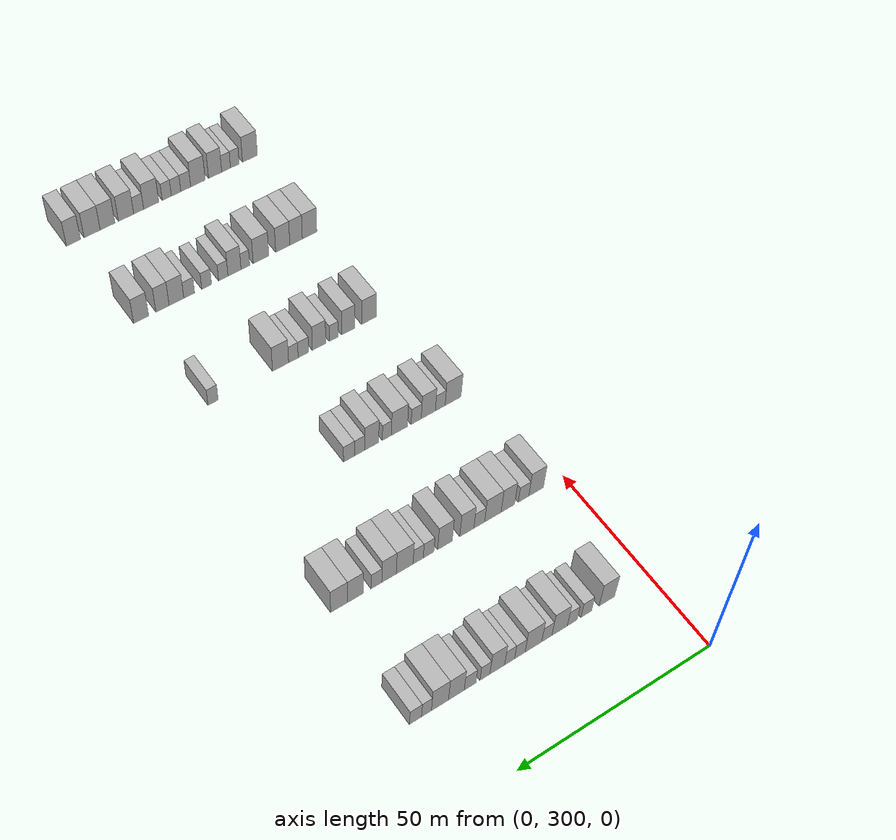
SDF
<sdf version="1.6">
 <world name="default">
  <model name="building_168">
   <static>1</static>
   <pose>25.0000 311.4972 0 0.000000 0.000000 0.000000</pose>
   <link name="link">
    <pose>0 0 4.50 0 0 0</pose>
    <collision name="collision"><geometry><box><size>10.0000 4.1602 9.0000</size></box></geometry></collision>
    <visual name="visual">
     <cast_shadows>0</cast_shadows>
     <geometry><box><size>10.0000 4.1602 9.0000</size></box></geometry>
     <material>
      <script>
       <uri>model://HANNAS_wall/materials/scripts</uri>
       <uri>model://HANNAS_wall/materials/textures</uri>
       <name>vrc/HANNAS_wall</name>
      </script>
     </material>
    </visual>
   </link>
  </model>
  <model name="building_169">
   <static>1</static>
   <pose>25.0000 317.0039 0 0.000000 0.000000 0.000000</pose>
   <link name="link">
    <pose>0 0 3.00 0 0 0</pose>
    <collision name="collision"><geometry><box><size>10.0000 2.8533 6.0000</size></box></geometry></collision>
    <visual name="visual">
     <cast_shadows>0</cast_shadows>
     <geometry><box><size>10.0000 2.8533 6.0000</size></box></geometry>
     <material>
      <script>
       <uri>model://HANNAS_wall/materials/scripts</uri>
       <uri>model://HANNAS_wall/materials/textures</uri>
       <name>vrc/HANNAS_wall</name>
      </script>
     </material>
    </visual>
   </link>
  </model>
  <model name="building_170">
   <static>1</static>
   <pose>25.0000 320.7446 0 0.000000 0.000000 0.000000</pose>
   <link name="link">
    <pose>0 0 3.00 0 0 0</pose>
    <collision name="collision"><geometry><box><size>10.0000 2.6281 6.0000</size></box></geometry></collision>
    <visual name="visual">
     <cast_shadows>0</cast_shadows>
     <geometry><box><size>10.0000 2.6281 6.0000</size></box></geometry>
     <material>
      <script>
       <uri>model://HANNAS_wall/materials/scripts</uri>
       <uri>model://HANNAS_wall/materials/textures</uri>
       <name>vrc/HANNAS_wall</name>
      </script>
     </material>
    </visual>
   </link>
  </model>
  <model name="building_171">
   <static>1</static>
   <pose>25.0000 324.0835 0 0.000000 0.000000 0.000000</pose>
   <link name="link">
    <pose>0 0 4.50 0 0 0</pose>
    <collision name="collision"><geometry><box><size>10.0000 4.0497 9.0000</size></box></geometry></collision>
    <visual name="visual">
     <cast_shadows>0</cast_shadows>
     <geometry><box><size>10.0000 4.0497 9.0000</size></box></geometry>
     <material>
      <script>
       <uri>model://HANNAS_wall/materials/scripts</uri>
       <uri>model://HANNAS_wall/materials/textures</uri>
       <name>vrc/HANNAS_wall</name>
      </script>
     </material>
    </visual>
   </link>
  </model>
  <model name="building_172">
   <static>1</static>
   <pose>25.0000 327.4471 0 0.000000 0.000000 0.000000</pose>
   <link name="link">
    <pose>0 0 3.00 0 0 0</pose>
    <collision name="collision"><geometry><box><size>10.0000 2.6775 6.0000</size></box></geometry></collision>
    <visual name="visual">
     <cast_shadows>0</cast_shadows>
     <geometry><box><size>10.0000 2.6775 6.0000</size></box></geometry>
     <material>
      <script>
       <uri>model://HANNAS_wall/materials/scripts</uri>
       <uri>model://HANNAS_wall/materials/textures</uri>
       <name>vrc/HANNAS_wall</name>
      </script>
     </material>
    </visual>
   </link>
  </model>
  <model name="building_173">
   <static>1</static>
   <pose>25.0000 330.9539 0 0.000000 0.000000 0.000000</pose>
   <link name="link">
    <pose>0 0 4.50 0 0 0</pose>
    <collision name="collision"><geometry><box><size>10.0000 4.3360 9.0000</size></box></geometry></collision>
    <visual name="visual">
     <cast_shadows>0</cast_shadows>
     <geometry><box><size>10.0000 4.3360 9.0000</size></box></geometry>
     <material>
      <script>
       <uri>model://HANNAS_wall/materials/scripts</uri>
       <uri>model://HANNAS_wall/materials/textures</uri>
       <name>vrc/HANNAS_wall</name>
      </script>
     </material>
    </visual>
   </link>
  </model>
  <model name="building_174">
   <static>1</static>
   <pose>25.0000 334.4661 0 0.000000 0.000000 0.000000</pose>
   <link name="link">
    <pose>0 0 3.00 0 0 0</pose>
    <collision name="collision"><geometry><box><size>10.0000 2.6885 6.0000</size></box></geometry></collision>
    <visual name="visual">
     <cast_shadows>0</cast_shadows>
     <geometry><box><size>10.0000 2.6885 6.0000</size></box></geometry>
     <material>
      <script>
       <uri>model://HANNAS_wall/materials/scripts</uri>
       <uri>model://HANNAS_wall/materials/textures</uri>
       <name>vrc/HANNAS_wall</name>
      </script>
     </material>
    </visual>
   </link>
  </model>
  <model name="building_175">
   <static>1</static>
   <pose>25.0000 337.0948 0 0.000000 0.000000 0.000000</pose>
   <link name="link">
    <pose>0 0 3.00 0 0 0</pose>
    <collision name="collision"><geometry><box><size>10.0000 2.5688 6.0000</size></box></geometry></collision>
    <visual name="visual">
     <cast_shadows>0</cast_shadows>
     <geometry><box><size>10.0000 2.5688 6.0000</size></box></geometry>
     <material>
      <script>
       <uri>model://HANNAS_wall/materials/scripts</uri>
       <uri>model://HANNAS_wall/materials/textures</uri>
       <name>vrc/HANNAS_wall</name>
      </script>
     </material>
    </visual>
   </link>
  </model>
  <model name="building_176">
   <static>1</static>
   <pose>25.0000 340.2703 0 0.000000 0.000000 0.000000</pose>
   <link name="link">
    <pose>0 0 4.50 0 0 0</pose>
    <collision name="collision"><geometry><box><size>10.0000 3.7822 9.0000</size></box></geometry></collision>
    <visual name="visual">
     <cast_shadows>0</cast_shadows>
     <geometry><box><size>10.0000 3.7822 9.0000</size></box></geometry>
     <material>
      <script>
       <uri>model://HANNAS_wall/materials/scripts</uri>
       <uri>model://HANNAS_wall/materials/textures</uri>
       <name>vrc/HANNAS_wall</name>
      </script>
     </material>
    </visual>
   </link>
  </model>
  <model name="building_177">
   <static>1</static>
   <pose>25.0000 343.4157 0 0.000000 0.000000 0.000000</pose>
   <link name="link">
    <pose>0 0 3.00 0 0 0</pose>
    <collision name="collision"><geometry><box><size>10.0000 2.5087 6.0000</size></box></geometry></collision>
    <visual name="visual">
     <cast_shadows>0</cast_shadows>
     <geometry><box><size>10.0000 2.5087 6.0000</size></box></geometry>
     <material>
      <script>
       <uri>model://HANNAS_wall/materials/scripts</uri>
       <uri>model://HANNAS_wall/materials/textures</uri>
       <name>vrc/HANNAS_wall</name>
      </script>
     </material>
    </visual>
   </link>
  </model>
  <model name="building_178">
   <static>1</static>
   <pose>25.0000 347.1576 0 0.000000 0.000000 0.000000</pose>
   <link name="link">
    <pose>0 0 3.00 0 0 0</pose>
    <collision name="collision"><geometry><box><size>10.0000 2.9750 6.0000</size></box></geometry></collision>
    <visual name="visual">
     <cast_shadows>0</cast_shadows>
     <geometry><box><size>10.0000 2.9750 6.0000</size></box></geometry>
     <material>
      <script>
       <uri>model://HANNAS_wall/materials/scripts</uri>
       <uri>model://HANNAS_wall/materials/textures</uri>
       <name>vrc/HANNAS_wall</name>
      </script>
     </material>
    </visual>
   </link>
  </model>
  <model name="building_179">
   <static>1</static>
   <pose>25.0000 350.6243 0 0.000000 0.000000 0.000000</pose>
   <link name="link">
    <pose>0 0 4.50 0 0 0</pose>
    <collision name="collision"><geometry><box><size>10.0000 3.9583 9.0000</size></box></geometry></collision>
    <visual name="visual">
     <cast_shadows>0</cast_shadows>
     <geometry><box><size>10.0000 3.9583 9.0000</size></box></geometry>
     <material>
      <script>
       <uri>model://HANNAS_wall/materials/scripts</uri>
       <uri>model://HANNAS_wall/materials/textures</uri>
       <name>vrc/HANNAS_wall</name>
      </script>
     </material>
    </visual>
   </link>
  </model>
  <model name="building_180">
   <static>1</static>
   <pose>25.0000 354.7249 0 0.000000 0.000000 0.000000</pose>
   <link name="link">
    <pose>0 0 4.50 0 0 0</pose>
    <collision name="collision"><geometry><box><size>10.0000 4.2429 9.0000</size></box></geometry></collision>
    <visual name="visual">
     <cast_shadows>0</cast_shadows>
     <geometry><box><size>10.0000 4.2429 9.0000</size></box></geometry>
     <material>
      <script>
       <uri>model://HANNAS_wall/materials/scripts</uri>
       <uri>model://HANNAS_wall/materials/textures</uri>
       <name>vrc/HANNAS_wall</name>
      </script>
     </material>
    </visual>
   </link>
  </model>
  <model name="building_181">
   <static>1</static>
   <pose>25.0000 358.0671 0 0.000000 0.000000 0.000000</pose>
   <link name="link">
    <pose>0 0 3.00 0 0 0</pose>
    <collision name="collision"><geometry><box><size>10.0000 2.4415 6.0000</size></box></geometry></collision>
    <visual name="visual">
     <cast_shadows>0</cast_shadows>
     <geometry><box><size>10.0000 2.4415 6.0000</size></box></geometry>
     <material>
      <script>
       <uri>model://HANNAS_wall/materials/scripts</uri>
       <uri>model://HANNAS_wall/materials/textures</uri>
       <name>vrc/HANNAS_wall</name>
      </script>
     </material>
    </visual>
   </link>
  </model>
  <model name="building_182">
   <static>1</static>
   <pose>25.0000 360.7845 0 0.000000 0.000000 0.000000</pose>
   <link name="link">
    <pose>0 0 3.00 0 0 0</pose>
    <collision name="collision"><geometry><box><size>10.0000 2.9932 6.0000</size></box></geometry></collision>
    <visual name="visual">
     <cast_shadows>0</cast_shadows>
     <geometry><box><size>10.0000 2.9932 6.0000</size></box></geometry>
     <material>
      <script>
       <uri>model://HANNAS_wall/materials/scripts</uri>
       <uri>model://HANNAS_wall/materials/textures</uri>
       <name>vrc/HANNAS_wall</name>
      </script>
     </material>
    </visual>
   </link>
  </model>
  <model name="building_397">
   <static>1</static>
   <pose>55.0000 307.5740 0 0.000000 0.000000 0.000000</pose>
   <link name="link">
    <pose>0 0 4.50 0 0 0</pose>
    <collision name="collision"><geometry><box><size>10.0000 4.0216 9.0000</size></box></geometry></collision>
    <visual name="visual">
     <cast_shadows>0</cast_shadows>
     <geometry><box><size>10.0000 4.0216 9.0000</size></box></geometry>
     <material>
      <script>
       <uri>model://HANNAS_wall/materials/scripts</uri>
       <uri>model://HANNAS_wall/materials/textures</uri>
       <name>vrc/HANNAS_wall</name>
      </script>
     </material>
    </visual>
   </link>
  </model>
  <model name="building_398">
   <static>1</static>
   <pose>55.0000 311.0352 0 0.000000 0.000000 0.000000</pose>
   <link name="link">
    <pose>0 0 3.00 0 0 0</pose>
    <collision name="collision"><geometry><box><size>10.0000 2.9007 6.0000</size></box></geometry></collision>
    <visual name="visual">
     <cast_shadows>0</cast_shadows>
     <geometry><box><size>10.0000 2.9007 6.0000</size></box></geometry>
     <material>
      <script>
       <uri>model://HANNAS_wall/materials/scripts</uri>
       <uri>model://HANNAS_wall/materials/textures</uri>
       <name>vrc/HANNAS_wall</name>
      </script>
     </material>
    </visual>
   </link>
  </model>
  <model name="building_399">
   <static>1</static>
   <pose>55.0000 315.3283 0 0.000000 0.000000 0.000000</pose>
   <link name="link">
    <pose>0 0 4.50 0 0 0</pose>
    <collision name="collision"><geometry><box><size>10.0000 3.6856 9.0000</size></box></geometry></collision>
    <visual name="visual">
     <cast_shadows>0</cast_shadows>
     <geometry><box><size>10.0000 3.6856 9.0000</size></box></geometry>
     <material>
      <script>
       <uri>model://HANNAS_wall/materials/scripts</uri>
       <uri>model://HANNAS_wall/materials/textures</uri>
       <name>vrc/HANNAS_wall</name>
      </script>
     </material>
    </visual>
   </link>
  </model>
  <model name="building_400">
   <static>1</static>
   <pose>55.0000 319.4059 0 0.000000 0.000000 0.000000</pose>
   <link name="link">
    <pose>0 0 4.50 0 0 0</pose>
    <collision name="collision"><geometry><box><size>10.0000 4.4695 9.0000</size></box></geometry></collision>
    <visual name="visual">
     <cast_shadows>0</cast_shadows>
     <geometry><box><size>10.0000 4.4695 9.0000</size></box></geometry>
     <material>
      <script>
       <uri>model://HANNAS_wall/materials/scripts</uri>
       <uri>model://HANNAS_wall/materials/textures</uri>
       <name>vrc/HANNAS_wall</name>
      </script>
     </material>
    </visual>
   </link>
  </model>
  <model name="building_401">
   <static>1</static>
   <pose>55.0000 323.0879 0 0.000000 0.000000 0.000000</pose>
   <link name="link">
    <pose>0 0 3.00 0 0 0</pose>
    <collision name="collision"><geometry><box><size>10.0000 2.8945 6.0000</size></box></geometry></collision>
    <visual name="visual">
     <cast_shadows>0</cast_shadows>
     <geometry><box><size>10.0000 2.8945 6.0000</size></box></geometry>
     <material>
      <script>
       <uri>model://HANNAS_wall/materials/scripts</uri>
       <uri>model://HANNAS_wall/materials/textures</uri>
       <name>vrc/HANNAS_wall</name>
      </script>
     </material>
    </visual>
   </link>
  </model>
  <model name="building_402">
   <static>1</static>
   <pose>55.0000 326.4264 0 0.000000 0.000000 0.000000</pose>
   <link name="link">
    <pose>0 0 4.50 0 0 0</pose>
    <collision name="collision"><geometry><box><size>10.0000 3.7826 9.0000</size></box></geometry></collision>
    <visual name="visual">
     <cast_shadows>0</cast_shadows>
     <geometry><box><size>10.0000 3.7826 9.0000</size></box></geometry>
     <material>
      <script>
       <uri>model://HANNAS_wall/materials/scripts</uri>
       <uri>model://HANNAS_wall/materials/textures</uri>
       <name>vrc/HANNAS_wall</name>
      </script>
     </material>
    </visual>
   </link>
  </model>
  <model name="building_403">
   <static>1</static>
   <pose>55.0000 332.2567 0 0.000000 0.000000 0.000000</pose>
   <link name="link">
    <pose>0 0 4.50 0 0 0</pose>
    <collision name="collision"><geometry><box><size>10.0000 3.8780 9.0000</size></box></geometry></collision>
    <visual name="visual">
     <cast_shadows>0</cast_shadows>
     <geometry><box><size>10.0000 3.8780 9.0000</size></box></geometry>
     <material>
      <script>
       <uri>model://HANNAS_wall/materials/scripts</uri>
       <uri>model://HANNAS_wall/materials/textures</uri>
       <name>vrc/HANNAS_wall</name>
      </script>
     </material>
    </visual>
   </link>
  </model>
  <model name="building_404">
   <static>1</static>
   <pose>55.0000 336.5912 0 0.000000 0.000000 0.000000</pose>
   <link name="link">
    <pose>0 0 3.00 0 0 0</pose>
    <collision name="collision"><geometry><box><size>10.0000 2.7910 6.0000</size></box></geometry></collision>
    <visual name="visual">
     <cast_shadows>0</cast_shadows>
     <geometry><box><size>10.0000 2.7910 6.0000</size></box></geometry>
     <material>
      <script>
       <uri>model://HANNAS_wall/materials/scripts</uri>
       <uri>model://HANNAS_wall/materials/textures</uri>
       <name>vrc/HANNAS_wall</name>
      </script>
     </material>
    </visual>
   </link>
  </model>
  <model name="building_405">
   <static>1</static>
   <pose>55.0000 339.3133 0 0.000000 0.000000 0.000000</pose>
   <link name="link">
    <pose>0 0 3.00 0 0 0</pose>
    <collision name="collision"><geometry><box><size>10.0000 2.6531 6.0000</size></box></geometry></collision>
    <visual name="visual">
     <cast_shadows>0</cast_shadows>
     <geometry><box><size>10.0000 2.6531 6.0000</size></box></geometry>
     <material>
      <script>
       <uri>model://HANNAS_wall/materials/scripts</uri>
       <uri>model://HANNAS_wall/materials/textures</uri>
       <name>vrc/HANNAS_wall</name>
      </script>
     </material>
    </visual>
   </link>
  </model>
  <model name="building_406">
   <static>1</static>
   <pose>55.0000 342.8339 0 0.000000 0.000000 0.000000</pose>
   <link name="link">
    <pose>0 0 4.50 0 0 0</pose>
    <collision name="collision"><geometry><box><size>10.0000 4.3882 9.0000</size></box></geometry></collision>
    <visual name="visual">
     <cast_shadows>0</cast_shadows>
     <geometry><box><size>10.0000 4.3882 9.0000</size></box></geometry>
     <material>
      <script>
       <uri>model://HANNAS_wall/materials/scripts</uri>
       <uri>model://HANNAS_wall/materials/textures</uri>
       <name>vrc/HANNAS_wall</name>
      </script>
     </material>
    </visual>
   </link>
  </model>
  <model name="building_407">
   <static>1</static>
   <pose>55.0000 346.8983 0 0.000000 0.000000 0.000000</pose>
   <link name="link">
    <pose>0 0 4.50 0 0 0</pose>
    <collision name="collision"><geometry><box><size>10.0000 3.7406 9.0000</size></box></geometry></collision>
    <visual name="visual">
     <cast_shadows>0</cast_shadows>
     <geometry><box><size>10.0000 3.7406 9.0000</size></box></geometry>
     <material>
      <script>
       <uri>model://HANNAS_wall/materials/scripts</uri>
       <uri>model://HANNAS_wall/materials/textures</uri>
       <name>vrc/HANNAS_wall</name>
      </script>
     </material>
    </visual>
   </link>
  </model>
  <model name="building_408">
   <static>1</static>
   <pose>55.0000 350.1558 0 0.000000 0.000000 0.000000</pose>
   <link name="link">
    <pose>0 0 3.00 0 0 0</pose>
    <collision name="collision"><geometry><box><size>10.0000 2.7743 6.0000</size></box></geometry></collision>
    <visual name="visual">
     <cast_shadows>0</cast_shadows>
     <geometry><box><size>10.0000 2.7743 6.0000</size></box></geometry>
     <material>
      <script>
       <uri>model://HANNAS_wall/materials/scripts</uri>
       <uri>model://HANNAS_wall/materials/textures</uri>
       <name>vrc/HANNAS_wall</name>
      </script>
     </material>
    </visual>
   </link>
  </model>
  <model name="building_409">
   <static>1</static>
   <pose>55.0000 355.5211 0 0.000000 0.000000 0.000000</pose>
   <link name="link">
    <pose>0 0 4.50 0 0 0</pose>
    <collision name="collision"><geometry><box><size>10.0000 3.9564 9.0000</size></box></geometry></collision>
    <visual name="visual">
     <cast_shadows>0</cast_shadows>
     <geometry><box><size>10.0000 3.9564 9.0000</size></box></geometry>
     <material>
      <script>
       <uri>model://HANNAS_wall/materials/scripts</uri>
       <uri>model://HANNAS_wall/materials/textures</uri>
       <name>vrc/HANNAS_wall</name>
      </script>
     </material>
    </visual>
   </link>
  </model>
  <model name="building_410">
   <static>1</static>
   <pose>55.0000 359.6458 0 0.000000 0.000000 0.000000</pose>
   <link name="link">
    <pose>0 0 4.50 0 0 0</pose>
    <collision name="collision"><geometry><box><size>10.0000 4.2929 9.0000</size></box></geometry></collision>
    <visual name="visual">
     <cast_shadows>0</cast_shadows>
     <geometry><box><size>10.0000 4.2929 9.0000</size></box></geometry>
     <material>
      <script>
       <uri>model://HANNAS_wall/materials/scripts</uri>
       <uri>model://HANNAS_wall/materials/textures</uri>
       <name>vrc/HANNAS_wall</name>
      </script>
     </material>
    </visual>
   </link>
  </model>
  <model name="building_615">
   <static>1</static>
   <pose>85.0000 308.7535 0 0.000000 0.000000 0.000000</pose>
   <link name="link">
    <pose>0 0 4.50 0 0 0</pose>
    <collision name="collision"><geometry><box><size>10.0000 4.4619 9.0000</size></box></geometry></collision>
    <visual name="visual">
     <cast_shadows>0</cast_shadows>
     <geometry><box><size>10.0000 4.4619 9.0000</size></box></geometry>
     <material>
      <script>
       <uri>model://HANNAS_wall/materials/scripts</uri>
       <uri>model://HANNAS_wall/materials/textures</uri>
       <name>vrc/HANNAS_wall</name>
      </script>
     </material>
    </visual>
   </link>
  </model>
  <model name="building_616">
   <static>1</static>
   <pose>85.0000 312.3551 0 0.000000 0.000000 0.000000</pose>
   <link name="link">
    <pose>0 0 3.00 0 0 0</pose>
    <collision name="collision"><geometry><box><size>10.0000 2.7413 6.0000</size></box></geometry></collision>
    <visual name="visual">
     <cast_shadows>0</cast_shadows>
     <geometry><box><size>10.0000 2.7413 6.0000</size></box></geometry>
     <material>
      <script>
       <uri>model://HANNAS_wall/materials/scripts</uri>
       <uri>model://HANNAS_wall/materials/textures</uri>
       <name>vrc/HANNAS_wall</name>
      </script>
     </material>
    </visual>
   </link>
  </model>
  <model name="building_617">
   <static>1</static>
   <pose>85.0000 315.6969 0 0.000000 0.000000 0.000000</pose>
   <link name="link">
    <pose>0 0 4.50 0 0 0</pose>
    <collision name="collision"><geometry><box><size>10.0000 3.9423 9.0000</size></box></geometry></collision>
    <visual name="visual">
     <cast_shadows>0</cast_shadows>
     <geometry><box><size>10.0000 3.9423 9.0000</size></box></geometry>
     <material>
      <script>
       <uri>model://HANNAS_wall/materials/scripts</uri>
       <uri>model://HANNAS_wall/materials/textures</uri>
       <name>vrc/HANNAS_wall</name>
      </script>
     </material>
    </visual>
   </link>
  </model>
  <model name="building_618">
   <static>1</static>
   <pose>85.0000 319.0641 0 0.000000 0.000000 0.000000</pose>
   <link name="link">
    <pose>0 0 3.00 0 0 0</pose>
    <collision name="collision"><geometry><box><size>10.0000 2.7921 6.0000</size></box></geometry></collision>
    <visual name="visual">
     <cast_shadows>0</cast_shadows>
     <geometry><box><size>10.0000 2.7921 6.0000</size></box></geometry>
     <material>
      <script>
       <uri>model://HANNAS_wall/materials/scripts</uri>
       <uri>model://HANNAS_wall/materials/textures</uri>
       <name>vrc/HANNAS_wall</name>
      </script>
     </material>
    </visual>
   </link>
  </model>
  <model name="building_619">
   <static>1</static>
   <pose>85.0000 323.6802 0 0.000000 0.000000 0.000000</pose>
   <link name="link">
    <pose>0 0 4.50 0 0 0</pose>
    <collision name="collision"><geometry><box><size>10.0000 4.4401 9.0000</size></box></geometry></collision>
    <visual name="visual">
     <cast_shadows>0</cast_shadows>
     <geometry><box><size>10.0000 4.4401 9.0000</size></box></geometry>
     <material>
      <script>
       <uri>model://HANNAS_wall/materials/scripts</uri>
       <uri>model://HANNAS_wall/materials/textures</uri>
       <name>vrc/HANNAS_wall</name>
      </script>
     </material>
    </visual>
   </link>
  </model>
  <model name="building_620">
   <static>1</static>
   <pose>85.0000 327.1331 0 0.000000 0.000000 0.000000</pose>
   <link name="link">
    <pose>0 0 3.00 0 0 0</pose>
    <collision name="collision"><geometry><box><size>10.0000 2.4656 6.0000</size></box></geometry></collision>
    <visual name="visual">
     <cast_shadows>0</cast_shadows>
     <geometry><box><size>10.0000 2.4656 6.0000</size></box></geometry>
     <material>
      <script>
       <uri>model://HANNAS_wall/materials/scripts</uri>
       <uri>model://HANNAS_wall/materials/textures</uri>
       <name>vrc/HANNAS_wall</name>
      </script>
     </material>
    </visual>
   </link>
  </model>
  <model name="building_621">
   <static>1</static>
   <pose>85.0000 331.2580 0 0.000000 0.000000 0.000000</pose>
   <link name="link">
    <pose>0 0 4.50 0 0 0</pose>
    <collision name="collision"><geometry><box><size>10.0000 3.7843 9.0000</size></box></geometry></collision>
    <visual name="visual">
     <cast_shadows>0</cast_shadows>
     <geometry><box><size>10.0000 3.7843 9.0000</size></box></geometry>
     <material>
      <script>
       <uri>model://HANNAS_wall/materials/scripts</uri>
       <uri>model://HANNAS_wall/materials/textures</uri>
       <name>vrc/HANNAS_wall</name>
      </script>
     </material>
    </visual>
   </link>
  </model>
  <model name="building_622">
   <static>1</static>
   <pose>85.0000 334.5003 0 0.000000 0.000000 0.000000</pose>
   <link name="link">
    <pose>0 0 3.00 0 0 0</pose>
    <collision name="collision"><geometry><box><size>10.0000 2.7002 6.0000</size></box></geometry></collision>
    <visual name="visual">
     <cast_shadows>0</cast_shadows>
     <geometry><box><size>10.0000 2.7002 6.0000</size></box></geometry>
     <material>
      <script>
       <uri>model://HANNAS_wall/materials/scripts</uri>
       <uri>model://HANNAS_wall/materials/textures</uri>
       <name>vrc/HANNAS_wall</name>
      </script>
     </material>
    </visual>
   </link>
  </model>
  <model name="building_623">
   <static>1</static>
   <pose>85.0000 337.3461 0 0.000000 0.000000 0.000000</pose>
   <link name="link">
    <pose>0 0 3.00 0 0 0</pose>
    <collision name="collision"><geometry><box><size>10.0000 2.9914 6.0000</size></box></geometry></collision>
    <visual name="visual">
     <cast_shadows>0</cast_shadows>
     <geometry><box><size>10.0000 2.9914 6.0000</size></box></geometry>
     <material>
      <script>
       <uri>model://HANNAS_wall/materials/scripts</uri>
       <uri>model://HANNAS_wall/materials/textures</uri>
       <name>vrc/HANNAS_wall</name>
      </script>
     </material>
    </visual>
   </link>
  </model>
  <model name="building_827">
   <static>1</static>
   <pose>115.0000 311.9459 0 0.000000 0.000000 0.000000</pose>
   <link name="link">
    <pose>0 0 4.50 0 0 0</pose>
    <collision name="collision"><geometry><box><size>10.0000 4.1751 9.0000</size></box></geometry></collision>
    <visual name="visual">
     <cast_shadows>0</cast_shadows>
     <geometry><box><size>10.0000 4.1751 9.0000</size></box></geometry>
     <material>
      <script>
       <uri>model://HANNAS_wall/materials/scripts</uri>
       <uri>model://HANNAS_wall/materials/textures</uri>
       <name>vrc/HANNAS_wall</name>
      </script>
     </material>
    </visual>
   </link>
  </model>
  <model name="building_828">
   <static>1</static>
   <pose>115.0000 317.8648 0 0.000000 0.000000 0.000000</pose>
   <link name="link">
    <pose>0 0 4.50 0 0 0</pose>
    <collision name="collision"><geometry><box><size>10.0000 3.6627 9.0000</size></box></geometry></collision>
    <visual name="visual">
     <cast_shadows>0</cast_shadows>
     <geometry><box><size>10.0000 3.6627 9.0000</size></box></geometry>
     <material>
      <script>
       <uri>model://HANNAS_wall/materials/scripts</uri>
       <uri>model://HANNAS_wall/materials/textures</uri>
       <name>vrc/HANNAS_wall</name>
      </script>
     </material>
    </visual>
   </link>
  </model>
  <model name="building_829">
   <static>1</static>
   <pose>115.0000 321.9274 0 0.000000 0.000000 0.000000</pose>
   <link name="link">
    <pose>0 0 3.00 0 0 0</pose>
    <collision name="collision"><geometry><box><size>10.0000 2.4625 6.0000</size></box></geometry></collision>
    <visual name="visual">
     <cast_shadows>0</cast_shadows>
     <geometry><box><size>10.0000 2.4625 6.0000</size></box></geometry>
     <material>
      <script>
       <uri>model://HANNAS_wall/materials/scripts</uri>
       <uri>model://HANNAS_wall/materials/textures</uri>
       <name>vrc/HANNAS_wall</name>
      </script>
     </material>
    </visual>
   </link>
  </model>
  <model name="building_830">
   <static>1</static>
   <pose>115.0000 326.0292 0 0.000000 0.000000 0.000000</pose>
   <link name="link">
    <pose>0 0 4.50 0 0 0</pose>
    <collision name="collision"><geometry><box><size>10.0000 3.7410 9.0000</size></box></geometry></collision>
    <visual name="visual">
     <cast_shadows>0</cast_shadows>
     <geometry><box><size>10.0000 3.7410 9.0000</size></box></geometry>
     <material>
      <script>
       <uri>model://HANNAS_wall/materials/scripts</uri>
       <uri>model://HANNAS_wall/materials/textures</uri>
       <name>vrc/HANNAS_wall</name>
      </script>
     </material>
    </visual>
   </link>
  </model>
  <model name="building_831">
   <static>1</static>
   <pose>115.0000 330.3670 0 0.000000 0.000000 0.000000</pose>
   <link name="link">
    <pose>0 0 3.00 0 0 0</pose>
    <collision name="collision"><geometry><box><size>10.0000 2.9347 6.0000</size></box></geometry></collision>
    <visual name="visual">
     <cast_shadows>0</cast_shadows>
     <geometry><box><size>10.0000 2.9347 6.0000</size></box></geometry>
     <material>
      <script>
       <uri>model://HANNAS_wall/materials/scripts</uri>
       <uri>model://HANNAS_wall/materials/textures</uri>
       <name>vrc/HANNAS_wall</name>
      </script>
     </material>
    </visual>
   </link>
  </model>
  <model name="building_832">
   <static>1</static>
   <pose>115.0000 333.1501 0 0.000000 0.000000 0.000000</pose>
   <link name="link">
    <pose>0 0 3.00 0 0 0</pose>
    <collision name="collision"><geometry><box><size>10.0000 2.6314 6.0000</size></box></geometry></collision>
    <visual name="visual">
     <cast_shadows>0</cast_shadows>
     <geometry><box><size>10.0000 2.6314 6.0000</size></box></geometry>
     <material>
      <script>
       <uri>model://HANNAS_wall/materials/scripts</uri>
       <uri>model://HANNAS_wall/materials/textures</uri>
       <name>vrc/HANNAS_wall</name>
      </script>
     </material>
    </visual>
   </link>
  </model>
  <model name="building_833">
   <static>1</static>
   <pose>115.0000 336.6706 0 0.000000 0.000000 0.000000</pose>
   <link name="link">
    <pose>0 0 4.50 0 0 0</pose>
    <collision name="collision"><geometry><box><size>10.0000 4.4095 9.0000</size></box></geometry></collision>
    <visual name="visual">
     <cast_shadows>0</cast_shadows>
     <geometry><box><size>10.0000 4.4095 9.0000</size></box></geometry>
     <material>
      <script>
       <uri>model://HANNAS_wall/materials/scripts</uri>
       <uri>model://HANNAS_wall/materials/textures</uri>
       <name>vrc/HANNAS_wall</name>
      </script>
     </material>
    </visual>
   </link>
  </model>
  <model name="building_834">
   <static>1</static>
   <pose>115.0000 354.9532 0 0.000000 0.000000 0.000000</pose>
   <link name="link">
    <pose>0 0 3.00 0 0 0</pose>
    <collision name="collision"><geometry><box><size>10.0000 2.7186 6.0000</size></box></geometry></collision>
    <visual name="visual">
     <cast_shadows>0</cast_shadows>
     <geometry><box><size>10.0000 2.7186 6.0000</size></box></geometry>
     <material>
      <script>
       <uri>model://HANNAS_wall/materials/scripts</uri>
       <uri>model://HANNAS_wall/materials/textures</uri>
       <name>vrc/HANNAS_wall</name>
      </script>
     </material>
    </visual>
   </link>
  </model>
  <model name="building_1045">
   <static>1</static>
   <pose>145.0000 309.4780 0 0.000000 0.000000 0.000000</pose>
   <link name="link">
    <pose>0 0 4.50 0 0 0</pose>
    <collision name="collision"><geometry><box><size>10.0000 4.2255 9.0000</size></box></geometry></collision>
    <visual name="visual">
     <cast_shadows>0</cast_shadows>
     <geometry><box><size>10.0000 4.2255 9.0000</size></box></geometry>
     <material>
      <script>
       <uri>model://HANNAS_wall/materials/scripts</uri>
       <uri>model://HANNAS_wall/materials/textures</uri>
       <name>vrc/HANNAS_wall</name>
      </script>
     </material>
    </visual>
   </link>
  </model>
  <model name="building_1046">
   <static>1</static>
   <pose>145.0000 313.4149 0 0.000000 0.000000 0.000000</pose>
   <link name="link">
    <pose>0 0 4.50 0 0 0</pose>
    <collision name="collision"><geometry><box><size>10.0000 3.6482 9.0000</size></box></geometry></collision>
    <visual name="visual">
     <cast_shadows>0</cast_shadows>
     <geometry><box><size>10.0000 3.6482 9.0000</size></box></geometry>
     <material>
      <script>
       <uri>model://HANNAS_wall/materials/scripts</uri>
       <uri>model://HANNAS_wall/materials/textures</uri>
       <name>vrc/HANNAS_wall</name>
      </script>
     </material>
    </visual>
   </link>
  </model>
  <model name="building_1047">
   <static>1</static>
   <pose>145.0000 317.2701 0 0.000000 0.000000 0.000000</pose>
   <link name="link">
    <pose>0 0 4.50 0 0 0</pose>
    <collision name="collision"><geometry><box><size>10.0000 4.0623 9.0000</size></box></geometry></collision>
    <visual name="visual">
     <cast_shadows>0</cast_shadows>
     <geometry><box><size>10.0000 4.0623 9.0000</size></box></geometry>
     <material>
      <script>
       <uri>model://HANNAS_wall/materials/scripts</uri>
       <uri>model://HANNAS_wall/materials/textures</uri>
       <name>vrc/HANNAS_wall</name>
      </script>
     </material>
    </visual>
   </link>
  </model>
  <model name="building_1048">
   <static>1</static>
   <pose>145.0000 323.5358 0 0.000000 0.000000 0.000000</pose>
   <link name="link">
    <pose>0 0 4.50 0 0 0</pose>
    <collision name="collision"><geometry><box><size>10.0000 4.4692 9.0000</size></box></geometry></collision>
    <visual name="visual">
     <cast_shadows>0</cast_shadows>
     <geometry><box><size>10.0000 4.4692 9.0000</size></box></geometry>
     <material>
      <script>
       <uri>model://HANNAS_wall/materials/scripts</uri>
       <uri>model://HANNAS_wall/materials/textures</uri>
       <name>vrc/HANNAS_wall</name>
      </script>
     </material>
    </visual>
   </link>
  </model>
  <model name="building_1049">
   <static>1</static>
   <pose>145.0000 327.9902 0 0.000000 0.000000 0.000000</pose>
   <link name="link">
    <pose>0 0 3.00 0 0 0</pose>
    <collision name="collision"><geometry><box><size>10.0000 2.4395 6.0000</size></box></geometry></collision>
    <visual name="visual">
     <cast_shadows>0</cast_shadows>
     <geometry><box><size>10.0000 2.4395 6.0000</size></box></geometry>
     <material>
      <script>
       <uri>model://HANNAS_wall/materials/scripts</uri>
       <uri>model://HANNAS_wall/materials/textures</uri>
       <name>vrc/HANNAS_wall</name>
      </script>
     </material>
    </visual>
   </link>
  </model>
  <model name="building_1050">
   <static>1</static>
   <pose>145.0000 331.0675 0 0.000000 0.000000 0.000000</pose>
   <link name="link">
    <pose>0 0 4.50 0 0 0</pose>
    <collision name="collision"><geometry><box><size>10.0000 3.7152 9.0000</size></box></geometry></collision>
    <visual name="visual">
     <cast_shadows>0</cast_shadows>
     <geometry><box><size>10.0000 3.7152 9.0000</size></box></geometry>
     <material>
      <script>
       <uri>model://HANNAS_wall/materials/scripts</uri>
       <uri>model://HANNAS_wall/materials/textures</uri>
       <name>vrc/HANNAS_wall</name>
      </script>
     </material>
    </visual>
   </link>
  </model>
  <model name="building_1051">
   <static>1</static>
   <pose>145.0000 334.2411 0 0.000000 0.000000 0.000000</pose>
   <link name="link">
    <pose>0 0 3.00 0 0 0</pose>
    <collision name="collision"><geometry><box><size>10.0000 2.6320 6.0000</size></box></geometry></collision>
    <visual name="visual">
     <cast_shadows>0</cast_shadows>
     <geometry><box><size>10.0000 2.6320 6.0000</size></box></geometry>
     <material>
      <script>
       <uri>model://HANNAS_wall/materials/scripts</uri>
       <uri>model://HANNAS_wall/materials/textures</uri>
       <name>vrc/HANNAS_wall</name>
      </script>
     </material>
    </visual>
   </link>
  </model>
  <model name="building_1052">
   <static>1</static>
   <pose>145.0000 338.9171 0 0.000000 0.000000 0.000000</pose>
   <link name="link">
    <pose>0 0 3.00 0 0 0</pose>
    <collision name="collision"><geometry><box><size>10.0000 2.7200 6.0000</size></box></geometry></collision>
    <visual name="visual">
     <cast_shadows>0</cast_shadows>
     <geometry><box><size>10.0000 2.7200 6.0000</size></box></geometry>
     <material>
      <script>
       <uri>model://HANNAS_wall/materials/scripts</uri>
       <uri>model://HANNAS_wall/materials/textures</uri>
       <name>vrc/HANNAS_wall</name>
      </script>
     </material>
    </visual>
   </link>
  </model>
  <model name="building_1053">
   <static>1</static>
   <pose>145.0000 343.7671 0 0.000000 0.000000 0.000000</pose>
   <link name="link">
    <pose>0 0 3.00 0 0 0</pose>
    <collision name="collision"><geometry><box><size>10.0000 2.9802 6.0000</size></box></geometry></collision>
    <visual name="visual">
     <cast_shadows>0</cast_shadows>
     <geometry><box><size>10.0000 2.9802 6.0000</size></box></geometry>
     <material>
      <script>
       <uri>model://HANNAS_wall/materials/scripts</uri>
       <uri>model://HANNAS_wall/materials/textures</uri>
       <name>vrc/HANNAS_wall</name>
      </script>
     </material>
    </visual>
   </link>
  </model>
  <model name="building_1054">
   <static>1</static>
   <pose>145.0000 347.2881 0 0.000000 0.000000 0.000000</pose>
   <link name="link">
    <pose>0 0 4.50 0 0 0</pose>
    <collision name="collision"><geometry><box><size>10.0000 4.0617 9.0000</size></box></geometry></collision>
    <visual name="visual">
     <cast_shadows>0</cast_shadows>
     <geometry><box><size>10.0000 4.0617 9.0000</size></box></geometry>
     <material>
      <script>
       <uri>model://HANNAS_wall/materials/scripts</uri>
       <uri>model://HANNAS_wall/materials/textures</uri>
       <name>vrc/HANNAS_wall</name>
      </script>
     </material>
    </visual>
   </link>
  </model>
  <model name="building_1055">
   <static>1</static>
   <pose>145.0000 351.1343 0 0.000000 0.000000 0.000000</pose>
   <link name="link">
    <pose>0 0 4.50 0 0 0</pose>
    <collision name="collision"><geometry><box><size>10.0000 3.6308 9.0000</size></box></geometry></collision>
    <visual name="visual">
     <cast_shadows>0</cast_shadows>
     <geometry><box><size>10.0000 3.6308 9.0000</size></box></geometry>
     <material>
      <script>
       <uri>model://HANNAS_wall/materials/scripts</uri>
       <uri>model://HANNAS_wall/materials/textures</uri>
       <name>vrc/HANNAS_wall</name>
      </script>
     </material>
    </visual>
   </link>
  </model>
  <model name="building_1056">
   <static>1</static>
   <pose>145.0000 356.9819 0 0.000000 0.000000 0.000000</pose>
   <link name="link">
    <pose>0 0 4.50 0 0 0</pose>
    <collision name="collision"><geometry><box><size>10.0000 4.0644 9.0000</size></box></geometry></collision>
    <visual name="visual">
     <cast_shadows>0</cast_shadows>
     <geometry><box><size>10.0000 4.0644 9.0000</size></box></geometry>
     <material>
      <script>
       <uri>model://HANNAS_wall/materials/scripts</uri>
       <uri>model://HANNAS_wall/materials/textures</uri>
       <name>vrc/HANNAS_wall</name>
      </script>
     </material>
    </visual>
   </link>
  </model>
  <model name="building_1263">
   <static>1</static>
   <pose>175.0000 308.3667 0 0.000000 0.000000 0.000000</pose>
   <link name="link">
    <pose>0 0 4.50 0 0 0</pose>
    <collision name="collision"><geometry><box><size>10.0000 4.4210 9.0000</size></box></geometry></collision>
    <visual name="visual">
     <cast_shadows>0</cast_shadows>
     <geometry><box><size>10.0000 4.4210 9.0000</size></box></geometry>
     <material>
      <script>
       <uri>model://HANNAS_wall/materials/scripts</uri>
       <uri>model://HANNAS_wall/materials/textures</uri>
       <name>vrc/HANNAS_wall</name>
      </script>
     </material>
    </visual>
   </link>
  </model>
  <model name="building_1264">
   <static>1</static>
   <pose>175.0000 312.8678 0 0.000000 0.000000 0.000000</pose>
   <link name="link">
    <pose>0 0 3.00 0 0 0</pose>
    <collision name="collision"><geometry><box><size>10.0000 2.5811 6.0000</size></box></geometry></collision>
    <visual name="visual">
     <cast_shadows>0</cast_shadows>
     <geometry><box><size>10.0000 2.5811 6.0000</size></box></geometry>
     <material>
      <script>
       <uri>model://HANNAS_wall/materials/scripts</uri>
       <uri>model://HANNAS_wall/materials/textures</uri>
       <name>vrc/HANNAS_wall</name>
      </script>
     </material>
    </visual>
   </link>
  </model>
  <model name="building_1265">
   <static>1</static>
   <pose>175.0000 315.4569 0 0.000000 0.000000 0.000000</pose>
   <link name="link">
    <pose>0 0 3.00 0 0 0</pose>
    <collision name="collision"><geometry><box><size>10.0000 2.5971 6.0000</size></box></geometry></collision>
    <visual name="visual">
     <cast_shadows>0</cast_shadows>
     <geometry><box><size>10.0000 2.5971 6.0000</size></box></geometry>
     <material>
      <script>
       <uri>model://HANNAS_wall/materials/scripts</uri>
       <uri>model://HANNAS_wall/materials/textures</uri>
       <name>vrc/HANNAS_wall</name>
      </script>
     </material>
    </visual>
   </link>
  </model>
  <model name="building_1266">
   <static>1</static>
   <pose>175.0000 318.6887 0 0.000000 0.000000 0.000000</pose>
   <link name="link">
    <pose>0 0 4.50 0 0 0</pose>
    <collision name="collision"><geometry><box><size>10.0000 3.8667 9.0000</size></box></geometry></collision>
    <visual name="visual">
     <cast_shadows>0</cast_shadows>
     <geometry><box><size>10.0000 3.8667 9.0000</size></box></geometry>
     <material>
      <script>
       <uri>model://HANNAS_wall/materials/scripts</uri>
       <uri>model://HANNAS_wall/materials/textures</uri>
       <name>vrc/HANNAS_wall</name>
      </script>
     </material>
    </visual>
   </link>
  </model>
  <model name="building_1267">
   <static>1</static>
   <pose>175.0000 323.7390 0 0.000000 0.000000 0.000000</pose>
   <link name="link">
    <pose>0 0 4.50 0 0 0</pose>
    <collision name="collision"><geometry><box><size>10.0000 4.2338 9.0000</size></box></geometry></collision>
    <visual name="visual">
     <cast_shadows>0</cast_shadows>
     <geometry><box><size>10.0000 4.2338 9.0000</size></box></geometry>
     <material>
      <script>
       <uri>model://HANNAS_wall/materials/scripts</uri>
       <uri>model://HANNAS_wall/materials/textures</uri>
       <name>vrc/HANNAS_wall</name>
      </script>
     </material>
    </visual>
   </link>
  </model>
  <model name="building_1268">
   <static>1</static>
   <pose>175.0000 327.2953 0 0.000000 0.000000 0.000000</pose>
   <link name="link">
    <pose>0 0 3.00 0 0 0</pose>
    <collision name="collision"><geometry><box><size>10.0000 2.8789 6.0000</size></box></geometry></collision>
    <visual name="visual">
     <cast_shadows>0</cast_shadows>
     <geometry><box><size>10.0000 2.8789 6.0000</size></box></geometry>
     <material>
      <script>
       <uri>model://HANNAS_wall/materials/scripts</uri>
       <uri>model://HANNAS_wall/materials/textures</uri>
       <name>vrc/HANNAS_wall</name>
      </script>
     </material>
    </visual>
   </link>
  </model>
  <model name="building_1269">
   <static>1</static>
   <pose>175.0000 330.0957 0 0.000000 0.000000 0.000000</pose>
   <link name="link">
    <pose>0 0 3.00 0 0 0</pose>
    <collision name="collision"><geometry><box><size>10.0000 2.7218 6.0000</size></box></geometry></collision>
    <visual name="visual">
     <cast_shadows>0</cast_shadows>
     <geometry><box><size>10.0000 2.7218 6.0000</size></box></geometry>
     <material>
      <script>
       <uri>model://HANNAS_wall/materials/scripts</uri>
       <uri>model://HANNAS_wall/materials/textures</uri>
       <name>vrc/HANNAS_wall</name>
      </script>
     </material>
    </visual>
   </link>
  </model>
  <model name="building_1270">
   <static>1</static>
   <pose>175.0000 332.7788 0 0.000000 0.000000 0.000000</pose>
   <link name="link">
    <pose>0 0 3.00 0 0 0</pose>
    <collision name="collision"><geometry><box><size>10.0000 2.6445 6.0000</size></box></geometry></collision>
    <visual name="visual">
     <cast_shadows>0</cast_shadows>
     <geometry><box><size>10.0000 2.6445 6.0000</size></box></geometry>
     <material>
      <script>
       <uri>model://HANNAS_wall/materials/scripts</uri>
       <uri>model://HANNAS_wall/materials/textures</uri>
       <name>vrc/HANNAS_wall</name>
      </script>
     </material>
    </visual>
   </link>
  </model>
  <model name="building_1271">
   <static>1</static>
   <pose>175.0000 337.2667 0 0.000000 0.000000 0.000000</pose>
   <link name="link">
    <pose>0 0 4.50 0 0 0</pose>
    <collision name="collision"><geometry><box><size>10.0000 4.3312 9.0000</size></box></geometry></collision>
    <visual name="visual">
     <cast_shadows>0</cast_shadows>
     <geometry><box><size>10.0000 4.3312 9.0000</size></box></geometry>
     <material>
      <script>
       <uri>model://HANNAS_wall/materials/scripts</uri>
       <uri>model://HANNAS_wall/materials/textures</uri>
       <name>vrc/HANNAS_wall</name>
      </script>
     </material>
    </visual>
   </link>
  </model>
  <model name="building_1272">
   <static>1</static>
   <pose>175.0000 340.8475 0 0.000000 0.000000 0.000000</pose>
   <link name="link">
    <pose>0 0 3.00 0 0 0</pose>
    <collision name="collision"><geometry><box><size>10.0000 2.8306 6.0000</size></box></geometry></collision>
    <visual name="visual">
     <cast_shadows>0</cast_shadows>
     <geometry><box><size>10.0000 2.8306 6.0000</size></box></geometry>
     <material>
      <script>
       <uri>model://HANNAS_wall/materials/scripts</uri>
       <uri>model://HANNAS_wall/materials/textures</uri>
       <name>vrc/HANNAS_wall</name>
      </script>
     </material>
    </visual>
   </link>
  </model>
  <model name="building_1273">
   <static>1</static>
   <pose>175.0000 344.4195 0 0.000000 0.000000 0.000000</pose>
   <link name="link">
    <pose>0 0 4.50 0 0 0</pose>
    <collision name="collision"><geometry><box><size>10.0000 4.3135 9.0000</size></box></geometry></collision>
    <visual name="visual">
     <cast_shadows>0</cast_shadows>
     <geometry><box><size>10.0000 4.3135 9.0000</size></box></geometry>
     <material>
      <script>
       <uri>model://HANNAS_wall/materials/scripts</uri>
       <uri>model://HANNAS_wall/materials/textures</uri>
       <name>vrc/HANNAS_wall</name>
      </script>
     </material>
    </visual>
   </link>
  </model>
  <model name="building_1274">
   <static>1</static>
   <pose>175.0000 349.6525 0 0.000000 0.000000 0.000000</pose>
   <link name="link">
    <pose>0 0 4.50 0 0 0</pose>
    <collision name="collision"><geometry><box><size>10.0000 4.1524 9.0000</size></box></geometry></collision>
    <visual name="visual">
     <cast_shadows>0</cast_shadows>
     <geometry><box><size>10.0000 4.1524 9.0000</size></box></geometry>
     <material>
      <script>
       <uri>model://HANNAS_wall/materials/scripts</uri>
       <uri>model://HANNAS_wall/materials/textures</uri>
       <name>vrc/HANNAS_wall</name>
      </script>
     </material>
    </visual>
   </link>
  </model>
  <model name="building_1275">
   <static>1</static>
   <pose>175.0000 353.9715 0 0.000000 0.000000 0.000000</pose>
   <link name="link">
    <pose>0 0 4.50 0 0 0</pose>
    <collision name="collision"><geometry><box><size>10.0000 4.4857 9.0000</size></box></geometry></collision>
    <visual name="visual">
     <cast_shadows>0</cast_shadows>
     <geometry><box><size>10.0000 4.4857 9.0000</size></box></geometry>
     <material>
      <script>
       <uri>model://HANNAS_wall/materials/scripts</uri>
       <uri>model://HANNAS_wall/materials/textures</uri>
       <name>vrc/HANNAS_wall</name>
      </script>
     </material>
    </visual>
   </link>
  </model>
  <model name="building_1276">
   <static>1</static>
   <pose>175.0000 359.1687 0 0.000000 0.000000 0.000000</pose>
   <link name="link">
    <pose>0 0 4.50 0 0 0</pose>
    <collision name="collision"><geometry><box><size>10.0000 3.9085 9.0000</size></box></geometry></collision>
    <visual name="visual">
     <cast_shadows>0</cast_shadows>
     <geometry><box><size>10.0000 3.9085 9.0000</size></box></geometry>
     <material>
      <script>
       <uri>model://HANNAS_wall/materials/scripts</uri>
       <uri>model://HANNAS_wall/materials/textures</uri>
       <name>vrc/HANNAS_wall</name>
      </script>
     </material>
    </visual>
   </link>
  </model>
 </world>
</sdf>
